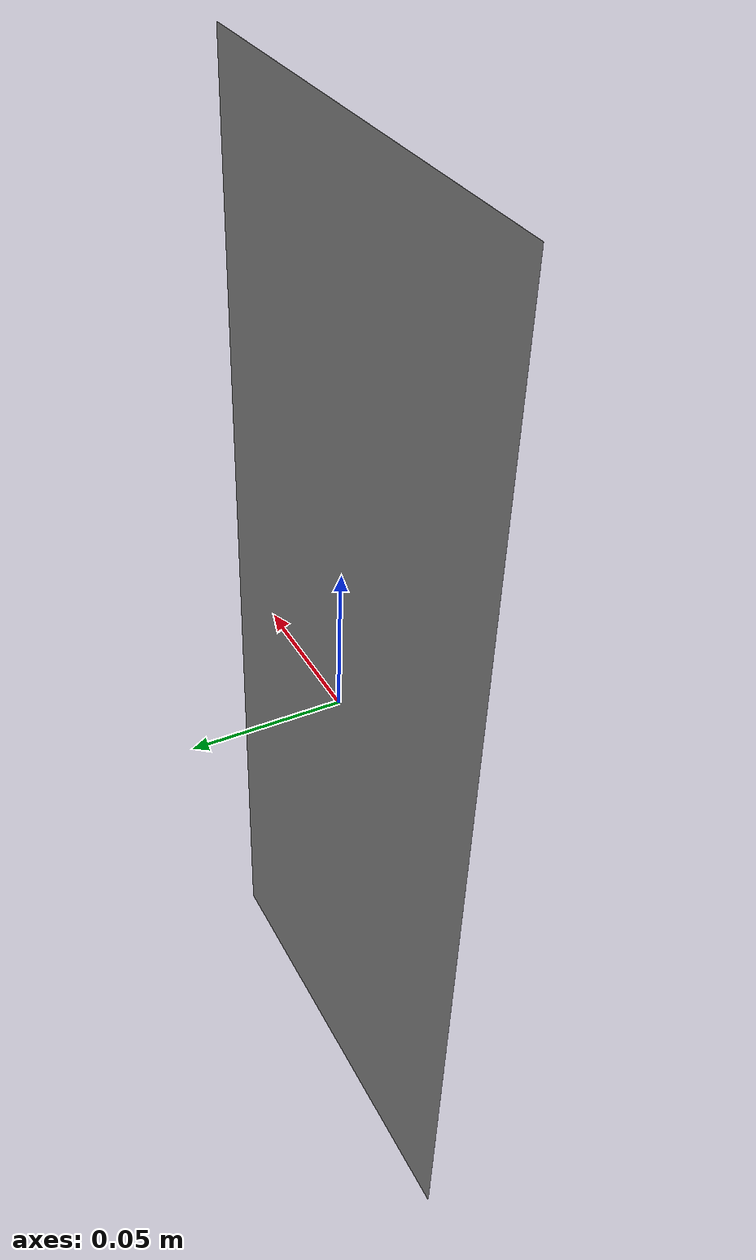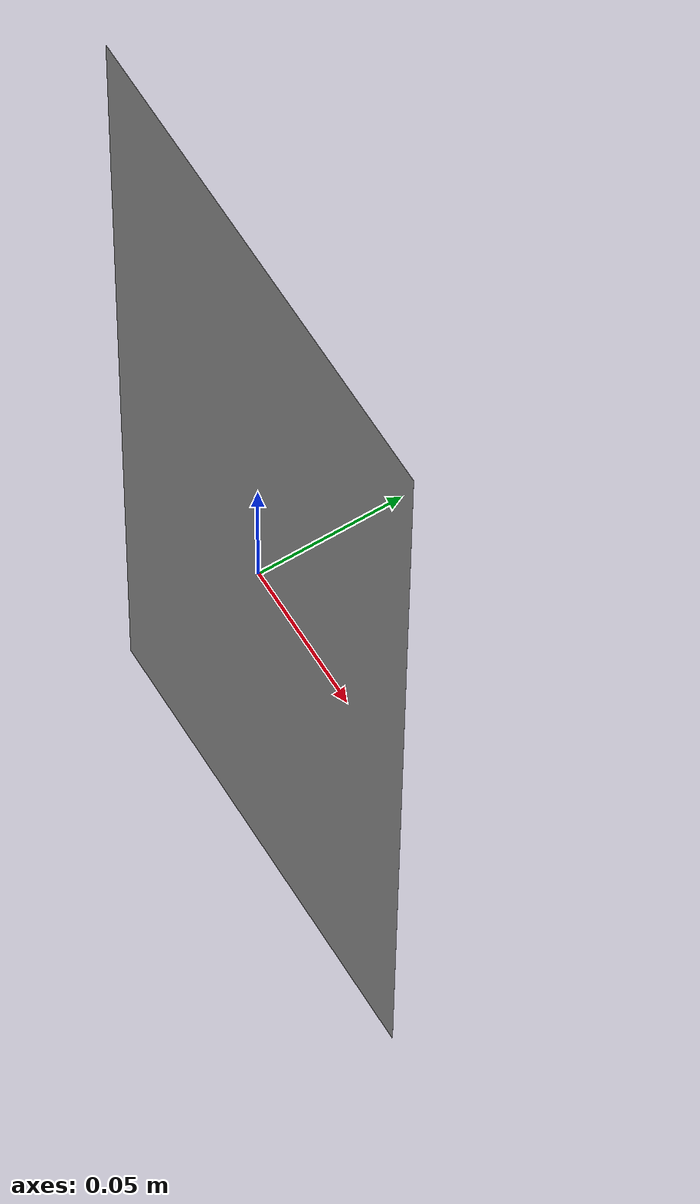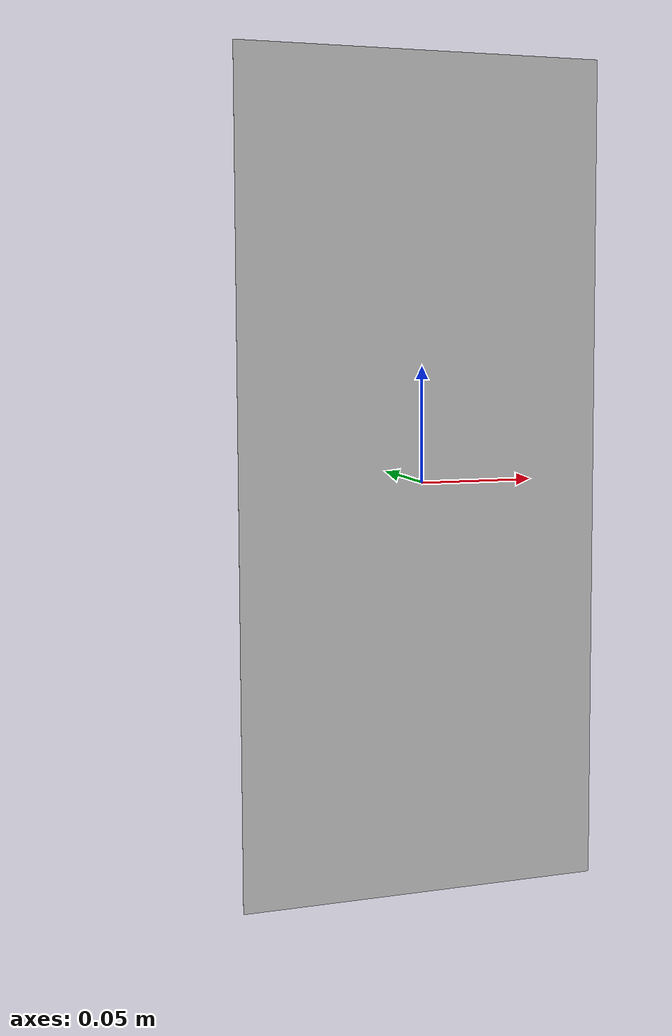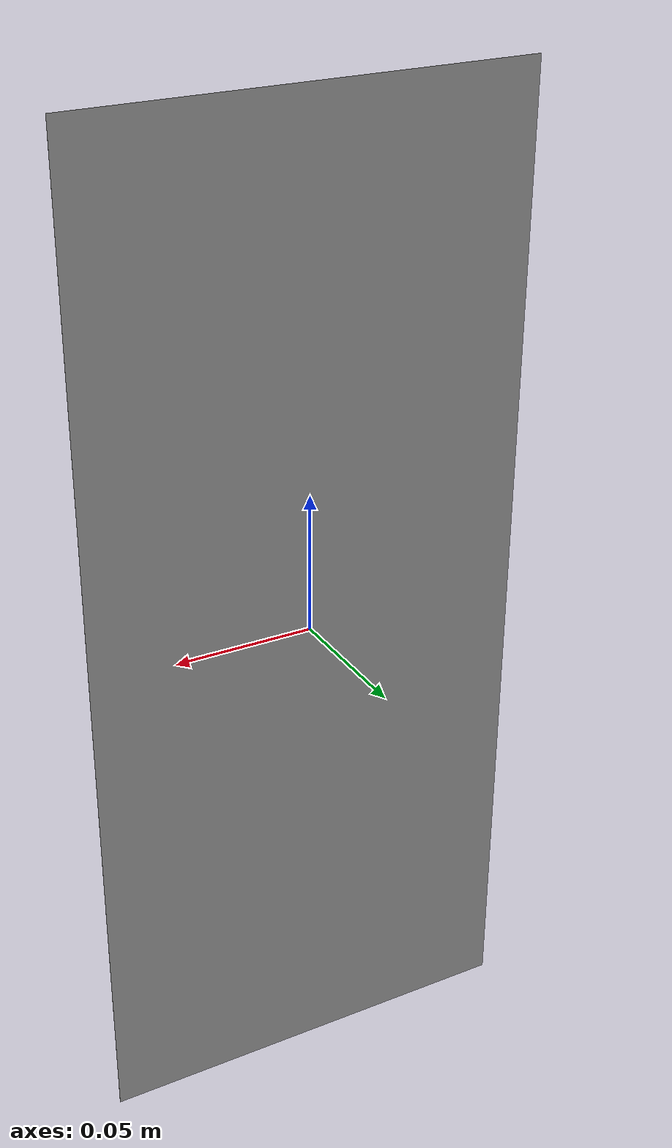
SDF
<?xml version="1.0" ?>
<sdf version="1.5">
  <model name="Bear">
    <static>true</static>
    <link name="link">
      <pose>0 0 0 0 0 0</pose>
      <collision name="collision">
        <geometry>
          <box>
            <size>.1615 0.00002 .3642</size>
          </box>
        </geometry>
      </collision>
      <visual name="visual">
        <cast_shadows>false</cast_shadows>
        <geometry>
          <box>
            <size>.1615 0.00002 .3642</size>
          </box>
        </geometry>
        <material>
          <script>
            <uri>model://Bear/materials/scripts</uri>
            <uri>model://Bear/materials/textures</uri>
            <name>vrc/Bear</name>
          </script>
        </material>
      </visual>
    </link>
  </model>
</sdf>
